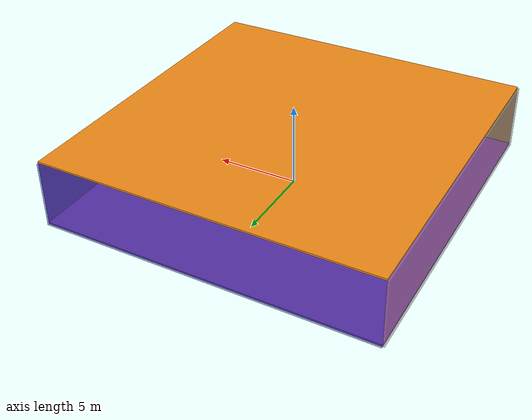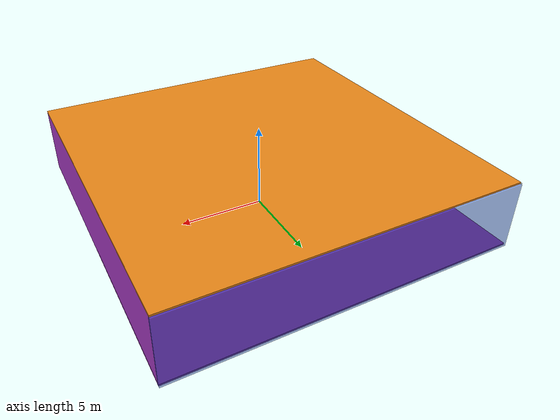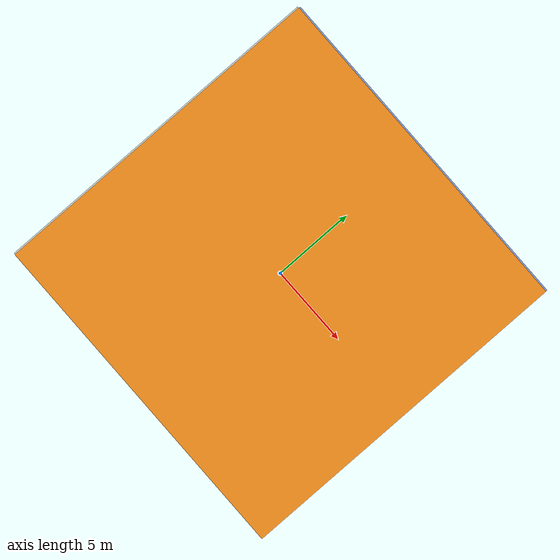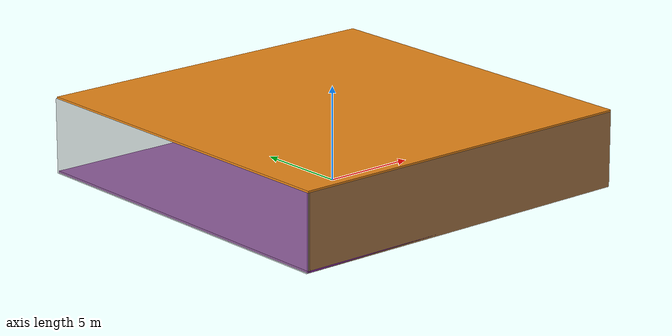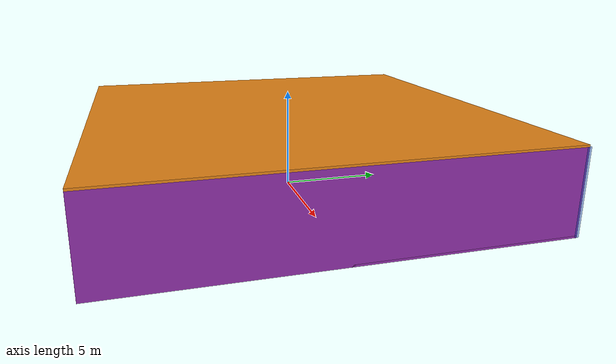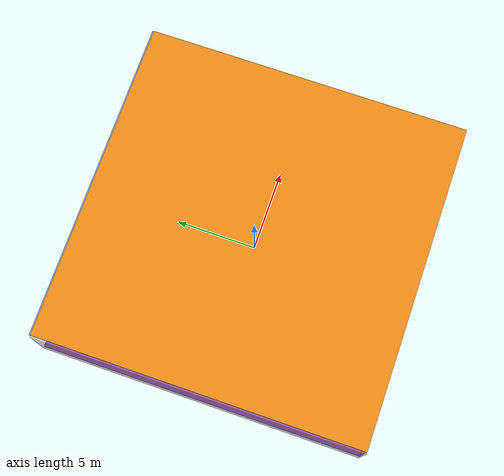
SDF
<sdf version="1.4">
 <world name="default">
  <physics type="ode">
   <max_step_size>0.001</max_step_size>
   <real_time_factor>1</real_time_factor>
   <real_time_update_rate>1000</real_time_update_rate>
   <gravity>0 0 -9.8</gravity>
  </physics>
  <scene><ambient>0.4 0.4 0.4 1</ambient><background>0.7 0.7 0.7 1</background><shadows>1</shadows></scene>
  <model name="Surrounding">
   <static>1</static>
   <link name="Ceiling">
    <collision name="Ceiling_Collision"><geometry><box><size>20 20 0.1</size></box></geometry></collision>
    <visual name="Ceiling_Visual">
     <geometry><box><size>20 20 0.1</size></box></geometry>
     <material>
      <script><uri>file://media/materials/scripts/gazebo.material</uri><name>Gazebo/Orange</name></script>
     </material>
    </visual>
    <pose>0 0 4.05 0 0 0</pose>
   </link>
   <link name="Wall_South">
    <collision name="Wall_South_Collision">
     <geometry><box><size>20 0 4</size></box></geometry>
     <pose>0 0 2 0 -0 0</pose>
    </collision>
    <visual name="Wall_South_Visual">
     <pose>0 0 2 0 -0 0</pose>
     <geometry><box><size>20 0 4</size></box></geometry>
     <material>
      <script><uri>file://media/materials/scripts/gazebo.material</uri><name>Gazebo/WoodFloor</name></script>
     </material>
    </visual>
    <velocity_decay><linear>0</linear><angular>0</angular></velocity_decay>
    <pose>0 -10 0 0 -0 0</pose>
   </link>
   <link name="Wall_East">
    <collision name="Wall_21_Collision">
     <geometry><box><size>20 0 4</size></box></geometry>
     <pose>0 0 2 0 -0 0</pose>
    </collision>
    <visual name="Wall_21_Visual">
     <pose>0 0 2 0 -0 0</pose>
     <geometry><box><size>20 0 4</size></box></geometry>
     <material>
      <script><uri>file://media/materials/scripts/gazebo.material</uri><name>Gazebo/PurpleGlow</name></script>
     </material>
    </visual>
    <velocity_decay><linear>0</linear><angular>0</angular></velocity_decay>
    <pose>10 0 0 0 -0 1.5708</pose>
   </link>
   <link name="Wall_North">
    <collision name="Wall_22_Collision">
     <geometry><box><size>20 0.2 4</size></box></geometry>
     <pose>0 0 2 0 -0 0</pose>
    </collision>
    <visual name="Wall_22_Visual">
     <pose>0 0 2 0 -0 0</pose>
     <geometry><box><size>20 0.2 4</size></box></geometry>
     <material>
      <script><uri>file://media/materials/scripts/gazebo.material</uri><name>Gazebo/BlueTransparent</name></script>
     </material>
    </visual>
    <velocity_decay><linear>0</linear><angular>0</angular></velocity_decay>
    <pose>0 10 0 0 -0 0</pose>
   </link>
   <link name="Wall_West">
    <collision name="Wall_23_Collision">
     <geometry><box><size>20 0.2 4</size></box></geometry>
     <pose>0 0 2 0 -0 0</pose>
    </collision>
    <visual name="Wall_23_Visual">
     <pose>0 0 2 0 -0 0</pose>
     <geometry><box><size>20 0.2 4</size></box></geometry>
     <material>
      <script><uri>file://media/materials/scripts/gazebo.material</uri><name>Gazebo/GreyTransparent</name></script>
     </material>
    </visual>
    <velocity_decay><linear>0</linear><angular>0</angular></velocity_decay>
    <pose>-10 0 0 0 0 -1.5708</pose>
   </link>
   <link name="Ground_link">
    <collision name="collision">
     <pose>0 0 .05 0 -0 0</pose>
     <geometry><box><size>20 20 0.1</size></box></geometry>
    </collision>
    <visual name="visual">
     <pose>0 0 .05 0 -0 0</pose>
     <geometry><box><size>20 20 0.1</size></box></geometry>
     <material>
      <script><uri>file://media/materials/scripts/gazebo.material</uri><name>Gazebo/PurpleGlow</name></script>
     </material>
    </visual>
   </link>
   <static>1</static>
  </model>
  <spherical_coordinates>
   <surface_model>EARTH_WGS84</surface_model>
   <latitude_deg>0</latitude_deg>
   <longitude_deg>0</longitude_deg>
   <elevation>0</elevation>
   <heading_deg>0</heading_deg>
  </spherical_coordinates>
  <light name="lightball_0" type="diffuse">
   <diffuse>0.8 0.8 0.8 1</diffuse>
   <specular>0.2 0.2 0.2 1</specular>
   <attenuation>
    <range>100</range>
    <constant>0.7</constant>
    <linear>0.01</linear>
    <quadratic>0.001</quadratic>
   </attenuation>
   <direction>-0.5 0.1 -0.9</direction>
   <pose>5.92644354667 2.4286728793 3.69764301846 0 0 0</pose>
  </light>
  <light name="lightball_1" type="diffuse">
   <diffuse>0.8 0.8 0.8 1</diffuse>
   <specular>0.2 0.2 0.2 1</specular>
   <attenuation>
    <range>100</range>
    <constant>0.7</constant>
    <linear>0.01</linear>
    <quadratic>0.001</quadratic>
   </attenuation>
   <direction>-0.5 0.1 -0.9</direction>
   <pose>-6.60393184191 4.91762969948 1.43998092666 0 0 0</pose>
  </light>
  <light name="lightball_2" type="diffuse">
   <diffuse>0.8 0.8 0.8 1</diffuse>
   <specular>0.2 0.2 0.2 1</specular>
   <attenuation>
    <range>100</range>
    <constant>0.7</constant>
    <linear>0.01</linear>
    <quadratic>0.001</quadratic>
   </attenuation>
   <direction>-0.5 0.1 -0.9</direction>
   <pose>-4.2185384743 0.832812161829 3.13076004866 0 0 0</pose>
  </light>
  <include><uri>model://table</uri><pose>-1.85319386333 1.95648650644 0 0 0 1.79291610003</pose></include>
  <include><uri>model://cabinet</uri><pose>2.66628139967 -1.63779787898 0 0 0 0.476376635382</pose></include>
  <include>
   <uri>model://construction_cone</uri>
   <pose>8.56707953279 -8.13142561974 0 0 0 0.789952176418</pose>
  </include>
 </world>
</sdf>

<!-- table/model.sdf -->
<sdf version="1.5">
  <model name="table">
    <static>true</static>
    <link name="link">
      <collision name="surface">
        <pose>0 0 1.0 0 0 0</pose>
        <geometry>
          <box>
            <size>1.5 0.8 0.03</size>
          </box>
        </geometry>
        <surface>
          <friction>
            <ode>
              <mu>0.6</mu>
              <mu2>0.6</mu2>
            </ode>
          </friction>
        </surface>
      </collision>
      <visual name="visual1">
        <pose>0 0 1.0 0 0 0</pose>
        <geometry>
          <box>
            <size>1.5 0.8 0.03</size>
          </box>
        </geometry>
        <material>
          <script>
            <uri>model://media/materials/scripts/gazebo.material</uri>
            <name>Gazebo/Wood</name>
          </script>
        </material>
      </visual>
      <collision name="front_left_leg">
        <pose>0.68 0.38 0.5 0 0 0</pose>
        <geometry>
          <cylinder>
            <radius>0.02</radius>
            <length>1.0</length>
          </cylinder>
        </geometry>
      </collision>
      <visual name="front_left_leg">
        <pose>0.68 0.38 0.5 0 0 0</pose>
        <geometry>
          <cylinder>
            <radius>0.02</radius>
            <length>1.0</length>
          </cylinder>
        </geometry>
        <material>
          <script>
            <uri>model://media/materials/scripts/gazebo.material</uri>
            <name>Gazebo/Grey</name>
          </script>
        </material>
      </visual>
      <collision name="front_right_leg">
        <pose>0.68 -0.38 0.5 0 0 0</pose>
        <geometry>
          <cylinder>
            <radius>0.02</radius>
            <length>1.0</length>
          </cylinder>
        </geometry>
      </collision>
      <visual name="front_right_leg">
        <pose>0.68 -0.38 0.5 0 0 0</pose>
        <geometry>
          <cylinder>
            <radius>0.02</radius>
            <length>1.0</length>
          </cylinder>
        </geometry>
        <material>
          <script>
            <uri>model://media/materials/scripts/gazebo.material</uri>
            <name>Gazebo/Grey</name>
          </script>
        </material>
      </visual>
      <collision name="back_right_leg">
        <pose>-0.68 -0.38 0.5 0 0 0</pose>
        <geometry>
          <cylinder>
            <radius>0.02</radius>
            <length>1.0</length>
          </cylinder>
        </geometry>
      </collision>
      <visual name="back_right_leg">
        <pose>-0.68 -0.38 0.5 0 0 0</pose>
        <geometry>
          <cylinder>
            <radius>0.02</radius>
            <length>1.0</length>
          </cylinder>
        </geometry>
        <material>
          <script>
            <uri>model://media/materials/scripts/gazebo.material</uri>
            <name>Gazebo/Grey</name>
          </script>
        </material>
      </visual>
      <collision name="back_left_leg">
        <pose>-0.68 0.38 0.5 0 0 0</pose>
        <geometry>
          <cylinder>
            <radius>0.02</radius>
            <length>1.0</length>
          </cylinder>
        </geometry>
      </collision>
      <visual name="back_left_leg">
        <pose>-0.68 0.38 0.5 0 0 0</pose>
        <geometry>
          <cylinder>
            <radius>0.02</radius>
            <length>1.0</length>
          </cylinder>
        </geometry>
        <material>
          <script>
            <uri>model://media/materials/scripts/gazebo.material</uri>
            <name>Gazebo/Grey</name>
          </script>
        </material>
      </visual>
    </link>
  </model>
</sdf>

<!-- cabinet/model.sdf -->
<sdf version="1.5">
  <model name="cabinet">
    <static>true</static>
    <link name="cabinet_bottom_plate">
      <inertial>
        <pose>0 0 -1 0 0 0</pose>
        <inertia>
          <ixx>2.050000</ixx>
          <ixy>0</ixy>
          <ixz>0</ixz>
          <iyy>2.050000</iyy>
          <iyz>0</iyz>
          <izz>2.050000</izz>
        </inertia>
        <mass>25.000000</mass>
      </inertial>
      <collision name="cabinet_bottom_plate_geom">
        <pose>0 0 0.010000 0 0 0</pose>
        <geometry>
          <box>
            <size>0.450000 0.450000 0.020000</size>
          </box>
        </geometry>
      </collision>
      <visual name="cabinet_bottom_plate_geom_visual">
        <pose>0 0 0.010000 0 0 0</pose>
        <geometry>
          <box>
            <size>0.450000 0.450000 0.020000</size>
          </box>
        </geometry>
        <material>
          <script>
            <uri>model://media/materials/scripts/gazebo.material</uri>
            <name>Gazebo/Wood</name>
          </script>
        </material>
      </visual>
      <collision name="cabinet_bottom_plate_geom_cabinet_back_plate">
        <pose>0.235000 0 0.510000 0 0 0</pose>
        <geometry>
          <box>
            <size>0.020000 0.450000 1.020000</size>
          </box>
        </geometry>
      </collision>
      <visual name="cabinet_bottom_plate_geom_cabinet_back_plate_visual">
        <pose>0.235000 0 0.510000 0 0 0</pose>
        <geometry>
          <box>
            <size>0.020000 0.450000 1.020000</size>
          </box>
        </geometry>
        <material>
          <script>
            <uri>model://media/materials/scripts/gazebo.material</uri>
            <name>Gazebo/Wood</name>
          </script>
        </material>
      </visual>
      <collision name="cabinet_bottom_plate_geom_cabinet_left_plate">
        <pose>0 0.235000 0.510000 0 0 0</pose>
        <geometry>
          <box>
            <size>0.450000 0.020000 1.020000</size>
          </box>
        </geometry>
      </collision>
      <visual name="cabinet_bottom_plate_geom_cabinet_left_plate_visual">
        <pose>0 0.235000 0.510000 0 0 0</pose>
        <geometry>
          <box>
            <size>0.450000 0.020000 1.020000</size>
          </box>
        </geometry>
        <material>
          <script>
            <uri>model://media/materials/scripts/gazebo.material</uri>
            <name>Gazebo/Wood</name>
          </script>
        </material>
      </visual>
      <collision name="cabinet_bottom_plate_geom_cabinet_middle_plate">
        <pose>0 0 0.510000 0 0 0</pose>
        <geometry>
          <box>
            <size>0.450000 0.450000 0.020000</size>
          </box>
        </geometry>
      </collision>
      <visual name="cabinet_bottom_plate_geom_cabinet_middle_plate_visual">
        <pose>0 0 0.510000 0 0 0</pose>
        <geometry>
          <box>
            <size>0.450000 0.450000 0.020000</size>
          </box>
        </geometry>
        <material>
          <script>
            <uri>model://media/materials/scripts/gazebo.material</uri>
            <name>Gazebo/Wood</name>
          </script>
        </material>
      </visual>
      <collision name="cabinet_bottom_plate_geom_cabinet_right_plate">
        <pose>0 -0.235000 0.510000 0 0 0</pose>
        <geometry>
          <box>
            <size>0.450000 0.020000 1.020000</size>
          </box>
        </geometry>
      </collision>
      <visual name="cabinet_bottom_plate_geom_cabinet_right_plate_visual">
        <pose>0 -0.235000 0.510000 0 0 0</pose>
        <geometry>
          <box>
            <size>0.450000 0.020000 1.020000</size>
          </box>
        </geometry>
        <material>
          <script>
            <uri>model://media/materials/scripts/gazebo.material</uri>
            <name>Gazebo/Wood</name>
          </script>
        </material>
      </visual>
      <collision name="cabinet_bottom_plate_geom_cabinet_top_plate">
        <pose>0 0 1.010000 0 0 0</pose>
        <geometry>
          <box>
            <size>0.450000 0.450000 0.020000</size>
          </box>
        </geometry>
      </collision>
      <visual name="cabinet_bottom_plate_geom_cabinet_top_plate_visual">
        <pose>0 0 1.010000 0 0 0</pose>
        <geometry>
          <box>
            <size>0.450000 0.450000 0.020000</size>
          </box>
        </geometry>
        <material>
          <script>
            <uri>model://media/materials/scripts/gazebo.material</uri>
            <name>Gazebo/Wood</name>
          </script>
        </material>
      </visual>
    </link>
  </model>
</sdf>

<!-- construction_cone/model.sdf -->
<sdf version="1.5">
  <model name="Construction Cone">
    <link name="link">
      <collision name="collision">
        <geometry>
          <mesh>
            <scale>10 10 10</scale>
            <uri>file://isr-testbed/construction_cone/meshes/construction_cone.dae</uri>
          </mesh>
        </geometry>
      </collision>
      <visual name="visual">
        <geometry>
          <mesh>
            <scale>10 10 10</scale>
            <uri>file://isr-testbed/construction_cone/meshes/construction_cone.dae</uri>
          </mesh>
        </geometry>
      </visual>
    </link>
  </model>
</sdf>
